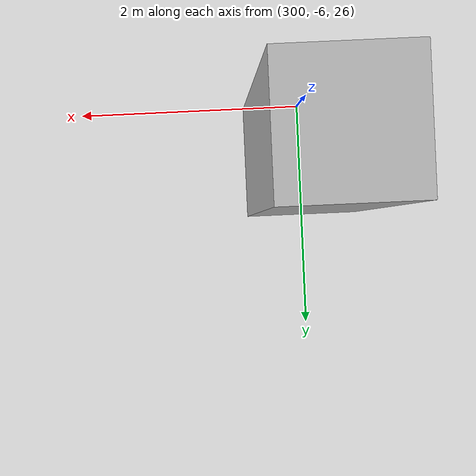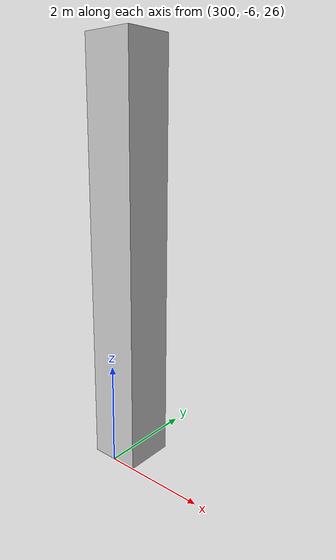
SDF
<?xml version="1.0" ?>
<sdf version="1.5">
  <world name="default">
    <!-- A global light source -->
    <include>
      <uri>model://sun</uri>
    </include>
    <!-- A ground plane -->
    <include>
      <uri>model://ground_plane</uri>
    </include>
    <include>
      <uri>model://asphalt_plane</uri>
    </include>

    <physics name='default_physics' default='0' type='ode'>
      <gravity>0 0 -9.8066</gravity>
      <ode>
        <solver>
          <type>quick</type>
          <iters>10</iters>
          <sor>1.3</sor>
          <use_dynamic_moi_rescaling>0</use_dynamic_moi_rescaling>
        </solver>
        <constraints>
          <cfm>0</cfm>
          <erp>0.2</erp>
          <contact_max_correcting_vel>100</contact_max_correcting_vel>
          <contact_surface_layer>0.001</contact_surface_layer>
        </constraints>
      </ode>
      <max_step_size>0.004</max_step_size>
      <real_time_factor>1</real_time_factor>
      <real_time_update_rate>250</real_time_update_rate>
      <magnetic_field>6.0e-6 2.3e-5 -4.2e-5</magnetic_field>
    </physics>

    <include>
      <uri>model://box-100</uri>
    </include>

  </world>
</sdf>

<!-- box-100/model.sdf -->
<sdf version="1.4">
<model name="box-100">
  <pose>300 -5.5 30 0 0 0</pose>
  <static>true</static>
    <link name="link">
      <inertial>
        <mass>1.0</mass>
        <inertia> <!-- inertias are tricky to compute -->
          <!-- http://gazebosim.org/tutorials?tut=inertia&cat=build_robot -->
          <ixx>0.083</ixx>       <!-- for a box: ixx = 0.083 * mass * (y*y + z*z) -->
          <ixy>0.0</ixy>         <!-- for a box: ixy = 0 -->
          <ixz>0.0</ixz>         <!-- for a box: ixz = 0 -->
          <iyy>0.083</iyy>       <!-- for a box: iyy = 0.083 * mass * (x*x + z*z) -->
          <iyz>0.0</iyz>         <!-- for a box: iyz = 0 -->
          <izz>0.083</izz>       <!-- for a box: izz = 0.083 * mass * (x*x + y*y) -->
        </inertia>
      </inertial>
      <collision name="collision">
        <geometry>
          <box>
            <size>1 1 8</size>
          </box>
        </geometry>
      </collision>
      <visual name="visual">
        <geometry>
          <box>
            <size>1 1 8</size>
          </box>
        </geometry>
      </visual>
    </link>
  </model>
</sdf>
